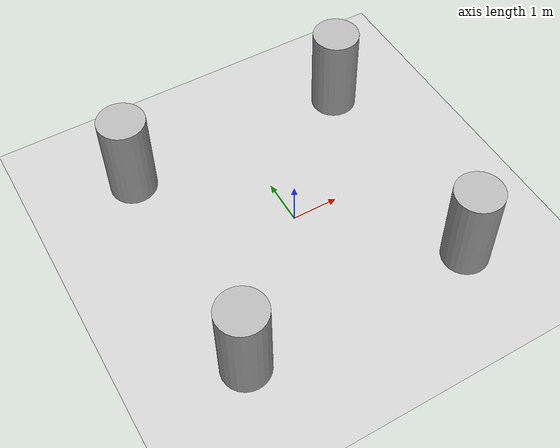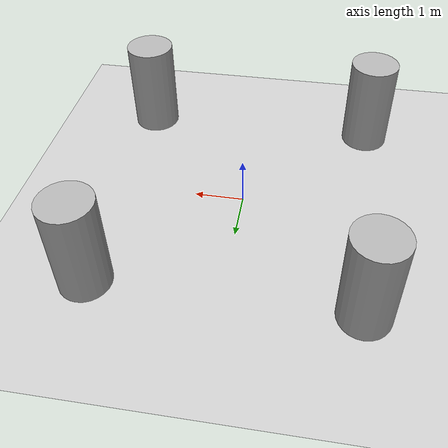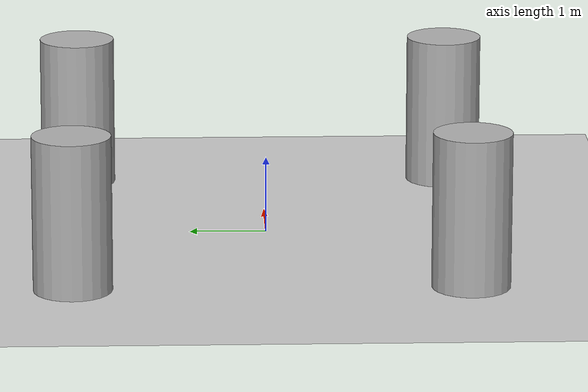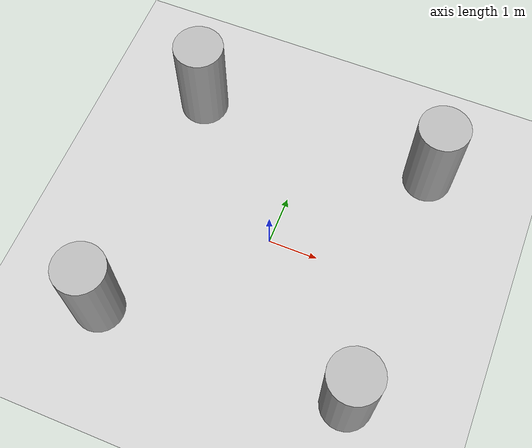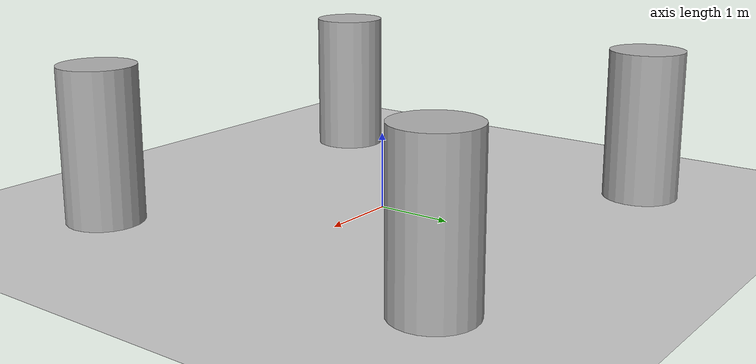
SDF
<?xml version="1.0" encoding="UTF-8"?>
<?xml-model schematypens="http://www.w3.org/2001/XMLSchema"?>

<sdf version="1.8">
	<world name="columns">
    <physics name="1ms" type="ignored">
      <max_step_size>0.003</max_step_size>
      <real_time_factor>1.0</real_time_factor>
    </physics>

    <plugin name="ignition::gazebo::systems::Physics" filename="libignition-gazebo-physics-system.so" />
    <plugin name="ignition::gazebo::systems::UserCommands" filename="libignition-gazebo-user-commands-system.so" />
    <plugin name="ignition::gazebo::systems::SceneBroadcaster" filename="libignition-gazebo-scene-broadcaster-system.so" />

    <light type="directional" name="sun">
      <cast_shadows>true</cast_shadows>
      <pose>0 0 10 0 0 0</pose>
      <diffuse>0.8 0.8 0.8 1</diffuse>
      <specular>0.2 0.2 0.2 1</specular>

      <attenuation>
        <range>1000</range>
        <constant>0.9</constant>
        <linear>0.01</linear>
        <quadratic>0.001</quadratic>
      </attenuation>

      <direction>-0.5 0.1 -0.9</direction>
    </light>

    <model name="ground_plane">
      <static>true</static>

      <link name="ground_plane_link">
        <collision name="ground_plane_collision">
          <geometry>
            <plane>
              <normal>0 0 1</normal>
            </plane>
          </geometry>
        </collision>

        <visual name="ground_plane_visual">
          <geometry>
            <plane>
              <normal>0 0 1</normal>
              <size>100 100</size>
            </plane>
          </geometry>

          <material>
            <ambient>0.8 0.8 0.8 1</ambient>
            <diffuse>0.8 0.8 0.8 1</diffuse>
            <specular>0.8 0.8 0.8 1</specular>
          </material>
        </visual>
      </link>
    </model>

    <model name="column0">
      <static>true</static>
      <pose>2.5 2.5 1 0 0 0</pose>

      <link name="column0_link">
        <visual name="column0_visual">
          <geometry>
            <cylinder>
              <radius>0.5</radius>
              <length>2</length>
            </cylinder>
          </geometry>

          <material>
            <ambient>0.3 0.3 0.3 1</ambient>
            <diffuse>0.7 0.7 0.7 1</diffuse>
            <specular>1 1 1 1</specular>
          </material>
        </visual>

        <collision name="column0_collision">
          <geometry>
            <cylinder>
              <radius>0.5</radius>
              <length>2</length>
            </cylinder>
          </geometry>
        </collision>
      </link>
    </model>

    <model name="column1">
      <static>true</static>
      <pose>2.5 -2.5 1 0 0 0</pose>

      <link name="column1_link">
        <visual name="column1_visual">
          <geometry>
            <cylinder>
              <radius>0.5</radius>
              <length>2</length>
            </cylinder>
          </geometry>

          <material>
            <ambient>0.3 0.3 0.3 1</ambient>
            <diffuse>0.7 0.7 0.7 1</diffuse>
            <specular>1 1 1 1</specular>
          </material>
        </visual>

        <collision name="column1_collision">
          <geometry>
            <cylinder>
              <radius>0.5</radius>
              <length>2</length>
            </cylinder>
          </geometry>
        </collision>
      </link>
    </model>

    <model name="column2">
      <static>true</static>
      <pose>-2.5 -2.5 1 0 0 0</pose>

      <link name="column2_link">
        <visual name="column2_visual">
          <geometry>
            <cylinder>
              <radius>0.5</radius>
              <length>2</length>
            </cylinder>
          </geometry>

          <material>
            <ambient>0.3 0.3 0.3 1</ambient>
            <diffuse>0.7 0.7 0.7 1</diffuse>
            <specular>1 1 1 1</specular>
          </material>
        </visual>

        <collision name="column2_collision">
          <geometry>
            <cylinder>
              <radius>0.5</radius>
              <length>2</length>
            </cylinder>
          </geometry>
        </collision>
      </link>
    </model>

    <model name="column3">
      <static>true</static>
      <pose>-2.5 2.5 1 0 0 0</pose>

      <link name="column3_link">
        <visual name="column3_visual">
          <geometry>
            <cylinder>
              <radius>0.5</radius>
              <length>2</length>
            </cylinder>
          </geometry>

          <material>
            <ambient>0.3 0.3 0.3 1</ambient>
            <diffuse>0.7 0.7 0.7 1</diffuse>
            <specular>1 1 1 1</specular>
          </material>
        </visual>

        <collision name="column3_collision">
          <geometry>
            <cylinder>
              <radius>0.5</radius>
              <length>2</length>
            </cylinder>
          </geometry>
        </collision>
      </link>
    </model>
	</world>
</sdf>
